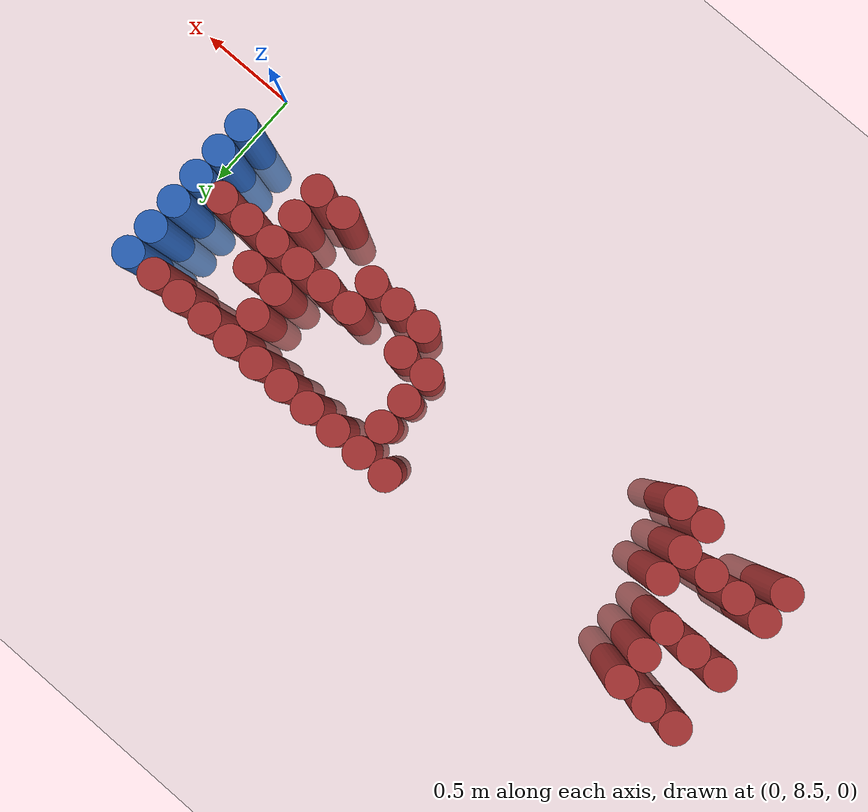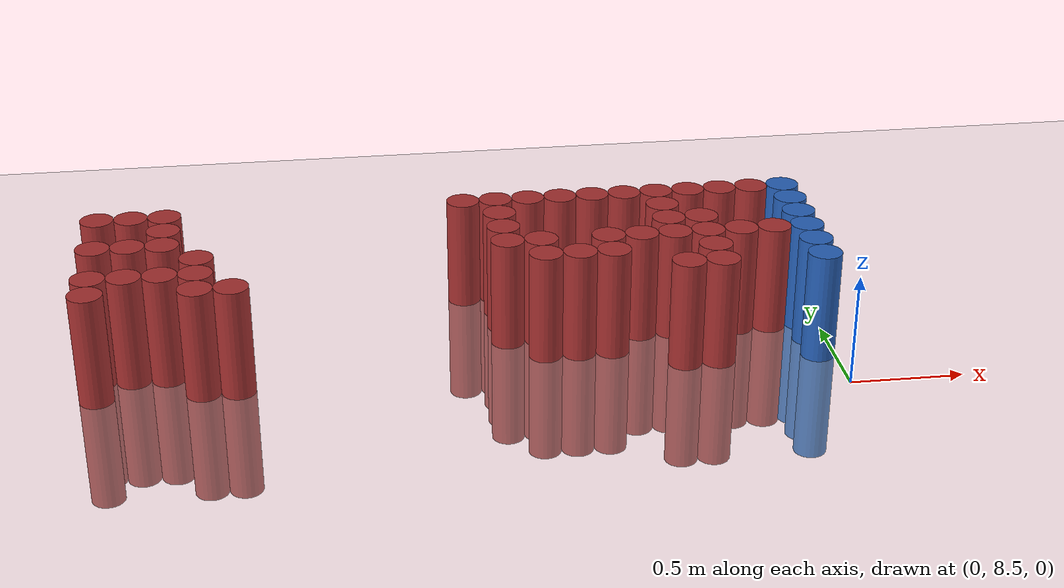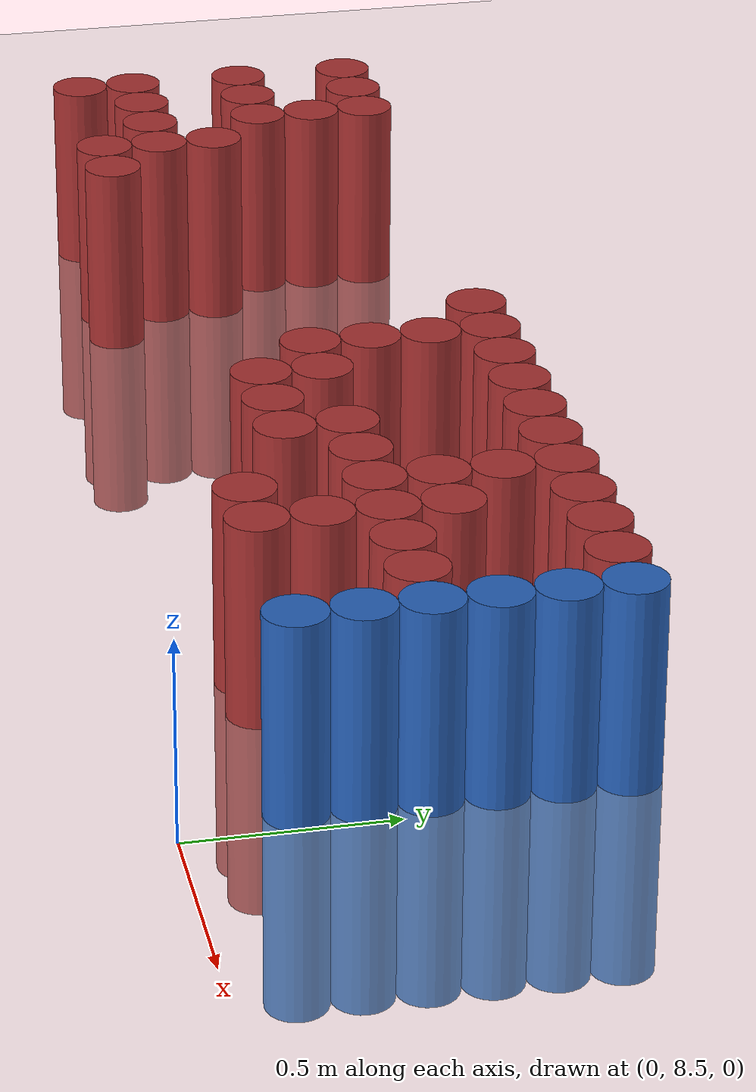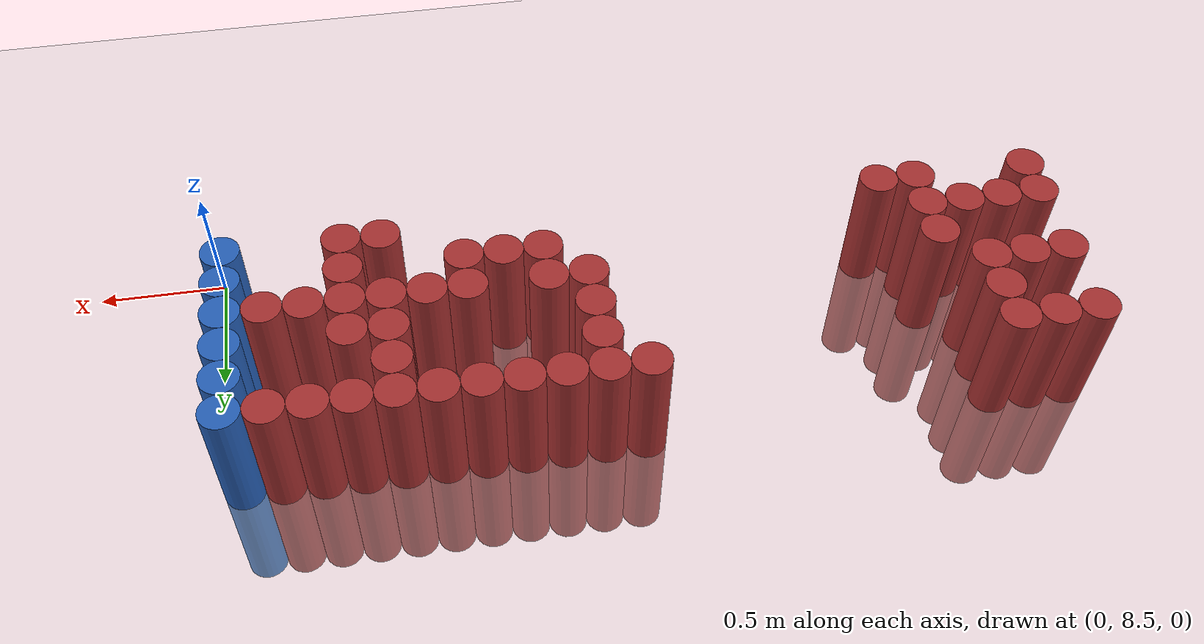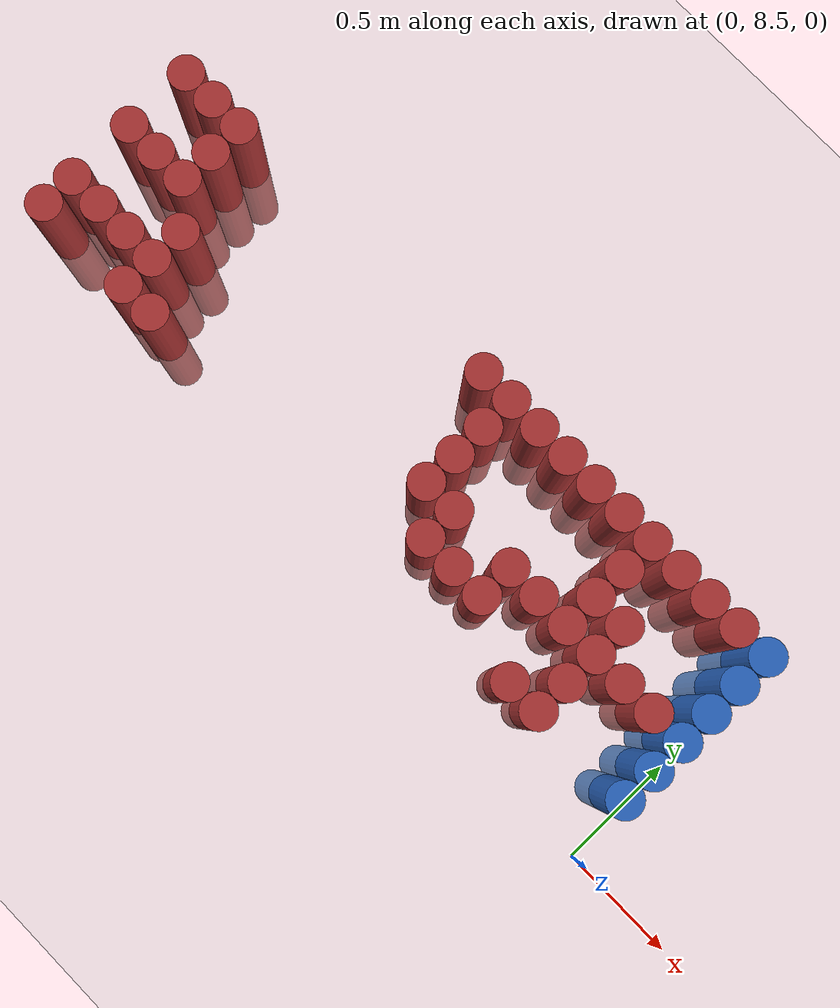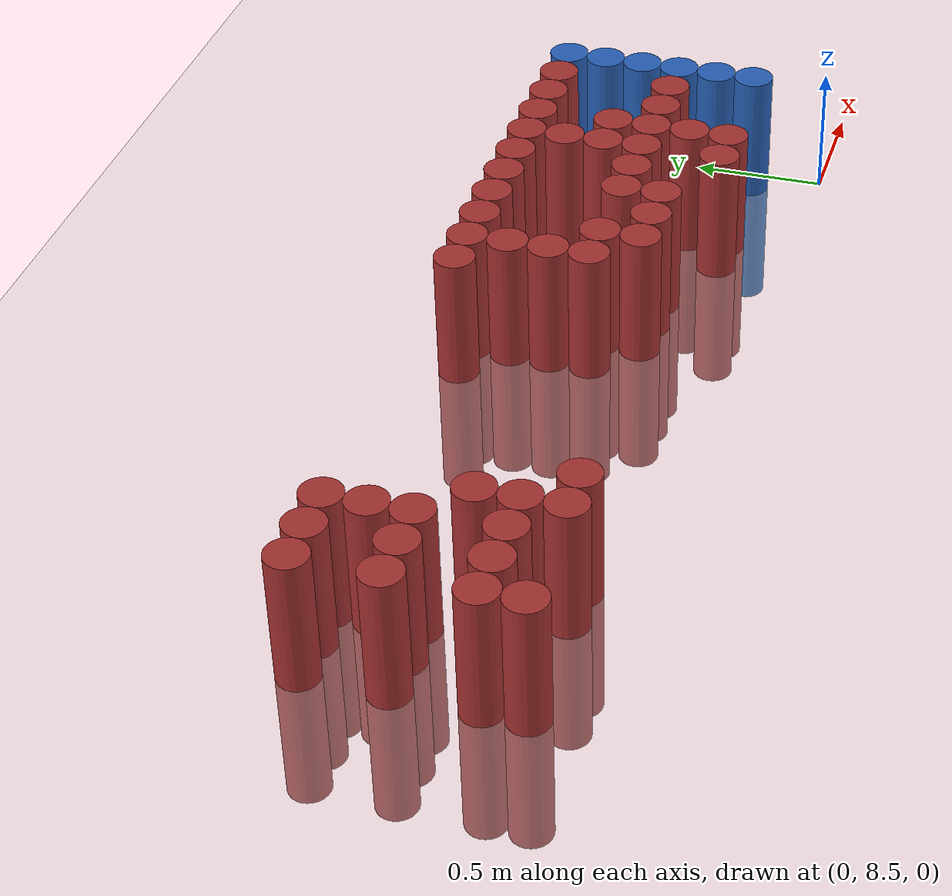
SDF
<sdf version="1.6">
 <world name="default">
  <model name="ground_plane">
   <static>1</static>
   <link name="link">
    <collision name="collision">
     <geometry><plane><normal>0 0 1</normal><size>100 100</size></plane></geometry>
     <surface><friction><ode><mu>100</mu><mu2>50</mu2></ode></friction></surface>
    </collision>
    <visual name="visual">
     <cast_shadows>0</cast_shadows>
     <geometry><plane><normal>0 0 1</normal><size>100 100</size></plane></geometry>
     <material>
      <script><uri>file://media/materials/scripts/gazebo.material</uri><name>Gazebo/Grey</name></script>
     </material>
    </visual>
   </link>
  </model>
  <model name="unit_cylinder_176">
   <static>1</static>
   <pose>-3.225000 8.775000 0.000000 0.000000 0.000000 0.000000</pose>
   <link name="link">
    <inertial>
     <mass>1</mass>
     <inertia><ixx>0.145833</ixx><ixy>0</ixy><ixz>0</ixz><iyy>0.145833</iyy><iyz>0</iyz><izz>0.125</izz></inertia>
    </inertial>
    <collision name="collision">
     <geometry><cylinder><radius>0.075000</radius><length>1</length></cylinder></geometry>
    </collision>
    <visual name="visual">
     <geometry><cylinder><radius>0.075000</radius><length>1</length></cylinder></geometry>
     <material>
      <ambient>0.648000 0.192000 0.192000 1</ambient>
      <diffuse>0.648000 0.192000 0.192000 1</diffuse>
     </material>
     <material>
      <script><name>Gazebo/Grey</name><uri>file://media/materials/scripts/gazebo.material</uri></script>
     </material>
    </visual>
   </link>
  </model>
  <model name="unit_cylinder_177">
   <static>1</static>
   <pose>-3.225000 8.925000 0.000000 0.000000 0.000000 0.000000</pose>
   <link name="link">
    <inertial>
     <mass>1</mass>
     <inertia><ixx>0.145833</ixx><ixy>0</ixy><ixz>0</ixz><iyy>0.145833</iyy><iyz>0</iyz><izz>0.125</izz></inertia>
    </inertial>
    <collision name="collision">
     <geometry><cylinder><radius>0.075000</radius><length>1</length></cylinder></geometry>
    </collision>
    <visual name="visual">
     <geometry><cylinder><radius>0.075000</radius><length>1</length></cylinder></geometry>
     <material>
      <ambient>0.648000 0.192000 0.192000 1</ambient>
      <diffuse>0.648000 0.192000 0.192000 1</diffuse>
     </material>
     <material>
      <script><name>Gazebo/Grey</name><uri>file://media/materials/scripts/gazebo.material</uri></script>
     </material>
    </visual>
   </link>
  </model>
  <model name="unit_cylinder_178">
   <static>1</static>
   <pose>-3.225000 9.225000 0.000000 0.000000 0.000000 0.000000</pose>
   <link name="link">
    <inertial>
     <mass>1</mass>
     <inertia><ixx>0.145833</ixx><ixy>0</ixy><ixz>0</ixz><iyy>0.145833</iyy><iyz>0</iyz><izz>0.125</izz></inertia>
    </inertial>
    <collision name="collision">
     <geometry><cylinder><radius>0.075000</radius><length>1</length></cylinder></geometry>
    </collision>
    <visual name="visual">
     <geometry><cylinder><radius>0.075000</radius><length>1</length></cylinder></geometry>
     <material>
      <ambient>0.648000 0.192000 0.192000 1</ambient>
      <diffuse>0.648000 0.192000 0.192000 1</diffuse>
     </material>
     <material>
      <script><name>Gazebo/Grey</name><uri>file://media/materials/scripts/gazebo.material</uri></script>
     </material>
    </visual>
   </link>
  </model>
  <model name="unit_cylinder_179">
   <static>1</static>
   <pose>-3.225000 9.525000 0.000000 0.000000 0.000000 0.000000</pose>
   <link name="link">
    <inertial>
     <mass>1</mass>
     <inertia><ixx>0.145833</ixx><ixy>0</ixy><ixz>0</ixz><iyy>0.145833</iyy><iyz>0</iyz><izz>0.125</izz></inertia>
    </inertial>
    <collision name="collision">
     <geometry><cylinder><radius>0.075000</radius><length>1</length></cylinder></geometry>
    </collision>
    <visual name="visual">
     <geometry><cylinder><radius>0.075000</radius><length>1</length></cylinder></geometry>
     <material>
      <ambient>0.648000 0.192000 0.192000 1</ambient>
      <diffuse>0.648000 0.192000 0.192000 1</diffuse>
     </material>
     <material>
      <script><name>Gazebo/Grey</name><uri>file://media/materials/scripts/gazebo.material</uri></script>
     </material>
    </visual>
   </link>
  </model>
  <model name="unit_cylinder_181">
   <static>1</static>
   <pose>-3.075000 8.925000 0.000000 0.000000 0.000000 0.000000</pose>
   <link name="link">
    <inertial>
     <mass>1</mass>
     <inertia><ixx>0.145833</ixx><ixy>0</ixy><ixz>0</ixz><iyy>0.145833</iyy><iyz>0</iyz><izz>0.125</izz></inertia>
    </inertial>
    <collision name="collision">
     <geometry><cylinder><radius>0.075000</radius><length>1</length></cylinder></geometry>
    </collision>
    <visual name="visual">
     <geometry><cylinder><radius>0.075000</radius><length>1</length></cylinder></geometry>
     <material>
      <ambient>0.648000 0.192000 0.192000 1</ambient>
      <diffuse>0.648000 0.192000 0.192000 1</diffuse>
     </material>
     <material>
      <script><name>Gazebo/Grey</name><uri>file://media/materials/scripts/gazebo.material</uri></script>
     </material>
    </visual>
   </link>
  </model>
  <model name="unit_cylinder_182">
   <static>1</static>
   <pose>-3.075000 9.225000 0.000000 0.000000 0.000000 0.000000</pose>
   <link name="link">
    <inertial>
     <mass>1</mass>
     <inertia><ixx>0.145833</ixx><ixy>0</ixy><ixz>0</ixz><iyy>0.145833</iyy><iyz>0</iyz><izz>0.125</izz></inertia>
    </inertial>
    <collision name="collision">
     <geometry><cylinder><radius>0.075000</radius><length>1</length></cylinder></geometry>
    </collision>
    <visual name="visual">
     <geometry><cylinder><radius>0.075000</radius><length>1</length></cylinder></geometry>
     <material>
      <ambient>0.648000 0.192000 0.192000 1</ambient>
      <diffuse>0.648000 0.192000 0.192000 1</diffuse>
     </material>
     <material>
      <script><name>Gazebo/Grey</name><uri>file://media/materials/scripts/gazebo.material</uri></script>
     </material>
    </visual>
   </link>
  </model>
  <model name="unit_cylinder_183">
   <static>1</static>
   <pose>-3.075000 9.525000 0.000000 0.000000 0.000000 0.000000</pose>
   <link name="link">
    <inertial>
     <mass>1</mass>
     <inertia><ixx>0.145833</ixx><ixy>0</ixy><ixz>0</ixz><iyy>0.145833</iyy><iyz>0</iyz><izz>0.125</izz></inertia>
    </inertial>
    <collision name="collision">
     <geometry><cylinder><radius>0.075000</radius><length>1</length></cylinder></geometry>
    </collision>
    <visual name="visual">
     <geometry><cylinder><radius>0.075000</radius><length>1</length></cylinder></geometry>
     <material>
      <ambient>0.648000 0.192000 0.192000 1</ambient>
      <diffuse>0.648000 0.192000 0.192000 1</diffuse>
     </material>
     <material>
      <script><name>Gazebo/Grey</name><uri>file://media/materials/scripts/gazebo.material</uri></script>
     </material>
    </visual>
   </link>
  </model>
  <model name="unit_cylinder_185">
   <static>1</static>
   <pose>-2.925000 8.925000 0.000000 0.000000 0.000000 0.000000</pose>
   <link name="link">
    <inertial>
     <mass>1</mass>
     <inertia><ixx>0.145833</ixx><ixy>0</ixy><ixz>0</ixz><iyy>0.145833</iyy><iyz>0</iyz><izz>0.125</izz></inertia>
    </inertial>
    <collision name="collision">
     <geometry><cylinder><radius>0.075000</radius><length>1</length></cylinder></geometry>
    </collision>
    <visual name="visual">
     <geometry><cylinder><radius>0.075000</radius><length>1</length></cylinder></geometry>
     <material>
      <ambient>0.648000 0.192000 0.192000 1</ambient>
      <diffuse>0.648000 0.192000 0.192000 1</diffuse>
     </material>
     <material>
      <script><name>Gazebo/Grey</name><uri>file://media/materials/scripts/gazebo.material</uri></script>
     </material>
    </visual>
   </link>
  </model>
  <model name="unit_cylinder_186">
   <static>1</static>
   <pose>-2.925000 9.225000 0.000000 0.000000 0.000000 0.000000</pose>
   <link name="link">
    <inertial>
     <mass>1</mass>
     <inertia><ixx>0.145833</ixx><ixy>0</ixy><ixz>0</ixz><iyy>0.145833</iyy><iyz>0</iyz><izz>0.125</izz></inertia>
    </inertial>
    <collision name="collision">
     <geometry><cylinder><radius>0.075000</radius><length>1</length></cylinder></geometry>
    </collision>
    <visual name="visual">
     <geometry><cylinder><radius>0.075000</radius><length>1</length></cylinder></geometry>
     <material>
      <ambient>0.648000 0.192000 0.192000 1</ambient>
      <diffuse>0.648000 0.192000 0.192000 1</diffuse>
     </material>
     <material>
      <script><name>Gazebo/Grey</name><uri>file://media/materials/scripts/gazebo.material</uri></script>
     </material>
    </visual>
   </link>
  </model>
  <model name="unit_cylinder_187">
   <static>1</static>
   <pose>-2.925000 9.375000 0.000000 0.000000 0.000000 0.000000</pose>
   <link name="link">
    <inertial>
     <mass>1</mass>
     <inertia><ixx>0.145833</ixx><ixy>0</ixy><ixz>0</ixz><iyy>0.145833</iyy><iyz>0</iyz><izz>0.125</izz></inertia>
    </inertial>
    <collision name="collision">
     <geometry><cylinder><radius>0.075000</radius><length>1</length></cylinder></geometry>
    </collision>
    <visual name="visual">
     <geometry><cylinder><radius>0.075000</radius><length>1</length></cylinder></geometry>
     <material>
      <ambient>0.648000 0.192000 0.192000 1</ambient>
      <diffuse>0.648000 0.192000 0.192000 1</diffuse>
     </material>
     <material>
      <script><name>Gazebo/Grey</name><uri>file://media/materials/scripts/gazebo.material</uri></script>
     </material>
    </visual>
   </link>
  </model>
  <model name="unit_cylinder_188">
   <static>1</static>
   <pose>-2.925000 9.525000 0.000000 0.000000 0.000000 0.000000</pose>
   <link name="link">
    <inertial>
     <mass>1</mass>
     <inertia><ixx>0.145833</ixx><ixy>0</ixy><ixz>0</ixz><iyy>0.145833</iyy><iyz>0</iyz><izz>0.125</izz></inertia>
    </inertial>
    <collision name="collision">
     <geometry><cylinder><radius>0.075000</radius><length>1</length></cylinder></geometry>
    </collision>
    <visual name="visual">
     <geometry><cylinder><radius>0.075000</radius><length>1</length></cylinder></geometry>
     <material>
      <ambient>0.648000 0.192000 0.192000 1</ambient>
      <diffuse>0.648000 0.192000 0.192000 1</diffuse>
     </material>
     <material>
      <script><name>Gazebo/Grey</name><uri>file://media/materials/scripts/gazebo.material</uri></script>
     </material>
    </visual>
   </link>
  </model>
  <model name="unit_cylinder_191">
   <static>1</static>
   <pose>-2.775000 8.775000 0.000000 0.000000 0.000000 0.000000</pose>
   <link name="link">
    <inertial>
     <mass>1</mass>
     <inertia><ixx>0.145833</ixx><ixy>0</ixy><ixz>0</ixz><iyy>0.145833</iyy><iyz>0</iyz><izz>0.125</izz></inertia>
    </inertial>
    <collision name="collision">
     <geometry><cylinder><radius>0.075000</radius><length>1</length></cylinder></geometry>
    </collision>
    <visual name="visual">
     <geometry><cylinder><radius>0.075000</radius><length>1</length></cylinder></geometry>
     <material>
      <ambient>0.648000 0.192000 0.192000 1</ambient>
      <diffuse>0.648000 0.192000 0.192000 1</diffuse>
     </material>
     <material>
      <script><name>Gazebo/Grey</name><uri>file://media/materials/scripts/gazebo.material</uri></script>
     </material>
    </visual>
   </link>
  </model>
  <model name="unit_cylinder_192">
   <static>1</static>
   <pose>-2.775000 8.925000 0.000000 0.000000 0.000000 0.000000</pose>
   <link name="link">
    <inertial>
     <mass>1</mass>
     <inertia><ixx>0.145833</ixx><ixy>0</ixy><ixz>0</ixz><iyy>0.145833</iyy><iyz>0</iyz><izz>0.125</izz></inertia>
    </inertial>
    <collision name="collision">
     <geometry><cylinder><radius>0.075000</radius><length>1</length></cylinder></geometry>
    </collision>
    <visual name="visual">
     <geometry><cylinder><radius>0.075000</radius><length>1</length></cylinder></geometry>
     <material>
      <ambient>0.648000 0.192000 0.192000 1</ambient>
      <diffuse>0.648000 0.192000 0.192000 1</diffuse>
     </material>
     <material>
      <script><name>Gazebo/Grey</name><uri>file://media/materials/scripts/gazebo.material</uri></script>
     </material>
    </visual>
   </link>
  </model>
  <model name="unit_cylinder_193">
   <static>1</static>
   <pose>-2.775000 9.075000 0.000000 0.000000 0.000000 0.000000</pose>
   <link name="link">
    <inertial>
     <mass>1</mass>
     <inertia><ixx>0.145833</ixx><ixy>0</ixy><ixz>0</ixz><iyy>0.145833</iyy><iyz>0</iyz><izz>0.125</izz></inertia>
    </inertial>
    <collision name="collision">
     <geometry><cylinder><radius>0.075000</radius><length>1</length></cylinder></geometry>
    </collision>
    <visual name="visual">
     <geometry><cylinder><radius>0.075000</radius><length>1</length></cylinder></geometry>
     <material>
      <ambient>0.648000 0.192000 0.192000 1</ambient>
      <diffuse>0.648000 0.192000 0.192000 1</diffuse>
     </material>
     <material>
      <script><name>Gazebo/Grey</name><uri>file://media/materials/scripts/gazebo.material</uri></script>
     </material>
    </visual>
   </link>
  </model>
  <model name="unit_cylinder_196">
   <static>1</static>
   <pose>-2.625000 8.775000 0.000000 0.000000 0.000000 0.000000</pose>
   <link name="link">
    <inertial>
     <mass>1</mass>
     <inertia><ixx>0.145833</ixx><ixy>0</ixy><ixz>0</ixz><iyy>0.145833</iyy><iyz>0</iyz><izz>0.125</izz></inertia>
    </inertial>
    <collision name="collision">
     <geometry><cylinder><radius>0.075000</radius><length>1</length></cylinder></geometry>
    </collision>
    <visual name="visual">
     <geometry><cylinder><radius>0.075000</radius><length>1</length></cylinder></geometry>
     <material>
      <ambient>0.648000 0.192000 0.192000 1</ambient>
      <diffuse>0.648000 0.192000 0.192000 1</diffuse>
     </material>
     <material>
      <script><name>Gazebo/Grey</name><uri>file://media/materials/scripts/gazebo.material</uri></script>
     </material>
    </visual>
   </link>
  </model>
  <model name="unit_cylinder_203">
   <static>1</static>
   <pose>-1.575000 9.525000 0.000000 0.000000 0.000000 0.000000</pose>
   <link name="link">
    <inertial>
     <mass>1</mass>
     <inertia><ixx>0.145833</ixx><ixy>0</ixy><ixz>0</ixz><iyy>0.145833</iyy><iyz>0</iyz><izz>0.125</izz></inertia>
    </inertial>
    <collision name="collision">
     <geometry><cylinder><radius>0.075000</radius><length>1</length></cylinder></geometry>
    </collision>
    <visual name="visual">
     <geometry><cylinder><radius>0.075000</radius><length>1</length></cylinder></geometry>
     <material>
      <ambient>0.648000 0.192000 0.192000 1</ambient>
      <diffuse>0.648000 0.192000 0.192000 1</diffuse>
     </material>
     <material>
      <script><name>Gazebo/Grey</name><uri>file://media/materials/scripts/gazebo.material</uri></script>
     </material>
    </visual>
   </link>
  </model>
  <model name="unit_cylinder_207">
   <static>1</static>
   <pose>-1.425000 9.075000 0.000000 0.000000 0.000000 0.000000</pose>
   <link name="link">
    <inertial>
     <mass>1</mass>
     <inertia><ixx>0.145833</ixx><ixy>0</ixy><ixz>0</ixz><iyy>0.145833</iyy><iyz>0</iyz><izz>0.125</izz></inertia>
    </inertial>
    <collision name="collision">
     <geometry><cylinder><radius>0.075000</radius><length>1</length></cylinder></geometry>
    </collision>
    <visual name="visual">
     <geometry><cylinder><radius>0.075000</radius><length>1</length></cylinder></geometry>
     <material>
      <ambient>0.648000 0.192000 0.192000 1</ambient>
      <diffuse>0.648000 0.192000 0.192000 1</diffuse>
     </material>
     <material>
      <script><name>Gazebo/Grey</name><uri>file://media/materials/scripts/gazebo.material</uri></script>
     </material>
    </visual>
   </link>
  </model>
  <model name="unit_cylinder_208">
   <static>1</static>
   <pose>-1.425000 9.225000 0.000000 0.000000 0.000000 0.000000</pose>
   <link name="link">
    <inertial>
     <mass>1</mass>
     <inertia><ixx>0.145833</ixx><ixy>0</ixy><ixz>0</ixz><iyy>0.145833</iyy><iyz>0</iyz><izz>0.125</izz></inertia>
    </inertial>
    <collision name="collision">
     <geometry><cylinder><radius>0.075000</radius><length>1</length></cylinder></geometry>
    </collision>
    <visual name="visual">
     <geometry><cylinder><radius>0.075000</radius><length>1</length></cylinder></geometry>
     <material>
      <ambient>0.648000 0.192000 0.192000 1</ambient>
      <diffuse>0.648000 0.192000 0.192000 1</diffuse>
     </material>
     <material>
      <script><name>Gazebo/Grey</name><uri>file://media/materials/scripts/gazebo.material</uri></script>
     </material>
    </visual>
   </link>
  </model>
  <model name="unit_cylinder_209">
   <static>1</static>
   <pose>-1.425000 9.375000 0.000000 0.000000 0.000000 0.000000</pose>
   <link name="link">
    <inertial>
     <mass>1</mass>
     <inertia><ixx>0.145833</ixx><ixy>0</ixy><ixz>0</ixz><iyy>0.145833</iyy><iyz>0</iyz><izz>0.125</izz></inertia>
    </inertial>
    <collision name="collision">
     <geometry><cylinder><radius>0.075000</radius><length>1</length></cylinder></geometry>
    </collision>
    <visual name="visual">
     <geometry><cylinder><radius>0.075000</radius><length>1</length></cylinder></geometry>
     <material>
      <ambient>0.648000 0.192000 0.192000 1</ambient>
      <diffuse>0.648000 0.192000 0.192000 1</diffuse>
     </material>
     <material>
      <script><name>Gazebo/Grey</name><uri>file://media/materials/scripts/gazebo.material</uri></script>
     </material>
    </visual>
   </link>
  </model>
  <model name="unit_cylinder_210">
   <static>1</static>
   <pose>-1.425000 9.525000 0.000000 0.000000 0.000000 0.000000</pose>
   <link name="link">
    <inertial>
     <mass>1</mass>
     <inertia><ixx>0.145833</ixx><ixy>0</ixy><ixz>0</ixz><iyy>0.145833</iyy><iyz>0</iyz><izz>0.125</izz></inertia>
    </inertial>
    <collision name="collision">
     <geometry><cylinder><radius>0.075000</radius><length>1</length></cylinder></geometry>
    </collision>
    <visual name="visual">
     <geometry><cylinder><radius>0.075000</radius><length>1</length></cylinder></geometry>
     <material>
      <ambient>0.648000 0.192000 0.192000 1</ambient>
      <diffuse>0.648000 0.192000 0.192000 1</diffuse>
     </material>
     <material>
      <script><name>Gazebo/Grey</name><uri>file://media/materials/scripts/gazebo.material</uri></script>
     </material>
    </visual>
   </link>
  </model>
  <model name="unit_cylinder_214">
   <static>1</static>
   <pose>-1.275000 8.925000 0.000000 0.000000 0.000000 0.000000</pose>
   <link name="link">
    <inertial>
     <mass>1</mass>
     <inertia><ixx>0.145833</ixx><ixy>0</ixy><ixz>0</ixz><iyy>0.145833</iyy><iyz>0</iyz><izz>0.125</izz></inertia>
    </inertial>
    <collision name="collision">
     <geometry><cylinder><radius>0.075000</radius><length>1</length></cylinder></geometry>
    </collision>
    <visual name="visual">
     <geometry><cylinder><radius>0.075000</radius><length>1</length></cylinder></geometry>
     <material>
      <ambient>0.648000 0.192000 0.192000 1</ambient>
      <diffuse>0.648000 0.192000 0.192000 1</diffuse>
     </material>
     <material>
      <script><name>Gazebo/Grey</name><uri>file://media/materials/scripts/gazebo.material</uri></script>
     </material>
    </visual>
   </link>
  </model>
  <model name="unit_cylinder_215">
   <static>1</static>
   <pose>-1.275000 9.075000 0.000000 0.000000 0.000000 0.000000</pose>
   <link name="link">
    <inertial>
     <mass>1</mass>
     <inertia><ixx>0.145833</ixx><ixy>0</ixy><ixz>0</ixz><iyy>0.145833</iyy><iyz>0</iyz><izz>0.125</izz></inertia>
    </inertial>
    <collision name="collision">
     <geometry><cylinder><radius>0.075000</radius><length>1</length></cylinder></geometry>
    </collision>
    <visual name="visual">
     <geometry><cylinder><radius>0.075000</radius><length>1</length></cylinder></geometry>
     <material>
      <ambient>0.648000 0.192000 0.192000 1</ambient>
      <diffuse>0.648000 0.192000 0.192000 1</diffuse>
     </material>
     <material>
      <script><name>Gazebo/Grey</name><uri>file://media/materials/scripts/gazebo.material</uri></script>
     </material>
    </visual>
   </link>
  </model>
  <model name="unit_cylinder_216">
   <static>1</static>
   <pose>-1.275000 9.525000 0.000000 0.000000 0.000000 0.000000</pose>
   <link name="link">
    <inertial>
     <mass>1</mass>
     <inertia><ixx>0.145833</ixx><ixy>0</ixy><ixz>0</ixz><iyy>0.145833</iyy><iyz>0</iyz><izz>0.125</izz></inertia>
    </inertial>
    <collision name="collision">
     <geometry><cylinder><radius>0.075000</radius><length>1</length></cylinder></geometry>
    </collision>
    <visual name="visual">
     <geometry><cylinder><radius>0.075000</radius><length>1</length></cylinder></geometry>
     <material>
      <ambient>0.648000 0.192000 0.192000 1</ambient>
      <diffuse>0.648000 0.192000 0.192000 1</diffuse>
     </material>
     <material>
      <script><name>Gazebo/Grey</name><uri>file://media/materials/scripts/gazebo.material</uri></script>
     </material>
    </visual>
   </link>
  </model>
  <model name="unit_cylinder_219">
   <static>1</static>
   <pose>-1.125000 8.925000 0.000000 0.000000 0.000000 0.000000</pose>
   <link name="link">
    <inertial>
     <mass>1</mass>
     <inertia><ixx>0.145833</ixx><ixy>0</ixy><ixz>0</ixz><iyy>0.145833</iyy><iyz>0</iyz><izz>0.125</izz></inertia>
    </inertial>
    <collision name="collision">
     <geometry><cylinder><radius>0.075000</radius><length>1</length></cylinder></geometry>
    </collision>
    <visual name="visual">
     <geometry><cylinder><radius>0.075000</radius><length>1</length></cylinder></geometry>
     <material>
      <ambient>0.648000 0.192000 0.192000 1</ambient>
      <diffuse>0.648000 0.192000 0.192000 1</diffuse>
     </material>
     <material>
      <script><name>Gazebo/Grey</name><uri>file://media/materials/scripts/gazebo.material</uri></script>
     </material>
    </visual>
   </link>
  </model>
  <model name="unit_cylinder_220">
   <static>1</static>
   <pose>-1.125000 9.525000 0.000000 0.000000 0.000000 0.000000</pose>
   <link name="link">
    <inertial>
     <mass>1</mass>
     <inertia><ixx>0.145833</ixx><ixy>0</ixy><ixz>0</ixz><iyy>0.145833</iyy><iyz>0</iyz><izz>0.125</izz></inertia>
    </inertial>
    <collision name="collision">
     <geometry><cylinder><radius>0.075000</radius><length>1</length></cylinder></geometry>
    </collision>
    <visual name="visual">
     <geometry><cylinder><radius>0.075000</radius><length>1</length></cylinder></geometry>
     <material>
      <ambient>0.648000 0.192000 0.192000 1</ambient>
      <diffuse>0.648000 0.192000 0.192000 1</diffuse>
     </material>
     <material>
      <script><name>Gazebo/Grey</name><uri>file://media/materials/scripts/gazebo.material</uri></script>
     </material>
    </visual>
   </link>
  </model>
  <model name="unit_cylinder_225">
   <static>1</static>
   <pose>-0.975000 8.925000 0.000000 0.000000 0.000000 0.000000</pose>
   <link name="link">
    <inertial>
     <mass>1</mass>
     <inertia><ixx>0.145833</ixx><ixy>0</ixy><ixz>0</ixz><iyy>0.145833</iyy><iyz>0</iyz><izz>0.125</izz></inertia>
    </inertial>
    <collision name="collision">
     <geometry><cylinder><radius>0.075000</radius><length>1</length></cylinder></geometry>
    </collision>
    <visual name="visual">
     <geometry><cylinder><radius>0.075000</radius><length>1</length></cylinder></geometry>
     <material>
      <ambient>0.648000 0.192000 0.192000 1</ambient>
      <diffuse>0.648000 0.192000 0.192000 1</diffuse>
     </material>
     <material>
      <script><name>Gazebo/Grey</name><uri>file://media/materials/scripts/gazebo.material</uri></script>
     </material>
    </visual>
   </link>
  </model>
  <model name="unit_cylinder_226">
   <static>1</static>
   <pose>-0.975000 9.075000 0.000000 0.000000 0.000000 0.000000</pose>
   <link name="link">
    <inertial>
     <mass>1</mass>
     <inertia><ixx>0.145833</ixx><ixy>0</ixy><ixz>0</ixz><iyy>0.145833</iyy><iyz>0</iyz><izz>0.125</izz></inertia>
    </inertial>
    <collision name="collision">
     <geometry><cylinder><radius>0.075000</radius><length>1</length></cylinder></geometry>
    </collision>
    <visual name="visual">
     <geometry><cylinder><radius>0.075000</radius><length>1</length></cylinder></geometry>
     <material>
      <ambient>0.648000 0.192000 0.192000 1</ambient>
      <diffuse>0.648000 0.192000 0.192000 1</diffuse>
     </material>
     <material>
      <script><name>Gazebo/Grey</name><uri>file://media/materials/scripts/gazebo.material</uri></script>
     </material>
    </visual>
   </link>
  </model>
  <model name="unit_cylinder_227">
   <static>1</static>
   <pose>-0.975000 9.525000 0.000000 0.000000 0.000000 0.000000</pose>
   <link name="link">
    <inertial>
     <mass>1</mass>
     <inertia><ixx>0.145833</ixx><ixy>0</ixy><ixz>0</ixz><iyy>0.145833</iyy><iyz>0</iyz><izz>0.125</izz></inertia>
    </inertial>
    <collision name="collision">
     <geometry><cylinder><radius>0.075000</radius><length>1</length></cylinder></geometry>
    </collision>
    <visual name="visual">
     <geometry><cylinder><radius>0.075000</radius><length>1</length></cylinder></geometry>
     <material>
      <ambient>0.648000 0.192000 0.192000 1</ambient>
      <diffuse>0.648000 0.192000 0.192000 1</diffuse>
     </material>
     <material>
      <script><name>Gazebo/Grey</name><uri>file://media/materials/scripts/gazebo.material</uri></script>
     </material>
    </visual>
   </link>
  </model>
  <model name="unit_cylinder_238">
   <static>1</static>
   <pose>-0.825000 9.075000 0.000000 0.000000 0.000000 0.000000</pose>
   <link name="link">
    <inertial>
     <mass>1</mass>
     <inertia><ixx>0.145833</ixx><ixy>0</ixy><ixz>0</ixz><iyy>0.145833</iyy><iyz>0</iyz><izz>0.125</izz></inertia>
    </inertial>
    <collision name="collision">
     <geometry><cylinder><radius>0.075000</radius><length>1</length></cylinder></geometry>
    </collision>
    <visual name="visual">
     <geometry><cylinder><radius>0.075000</radius><length>1</length></cylinder></geometry>
     <material>
      <ambient>0.648000 0.192000 0.192000 1</ambient>
      <diffuse>0.648000 0.192000 0.192000 1</diffuse>
     </material>
     <material>
      <script><name>Gazebo/Grey</name><uri>file://media/materials/scripts/gazebo.material</uri></script>
     </material>
    </visual>
   </link>
  </model>
  <model name="unit_cylinder_239">
   <static>1</static>
   <pose>-0.825000 9.525000 0.000000 0.000000 0.000000 0.000000</pose>
   <link name="link">
    <inertial>
     <mass>1</mass>
     <inertia><ixx>0.145833</ixx><ixy>0</ixy><ixz>0</ixz><iyy>0.145833</iyy><iyz>0</iyz><izz>0.125</izz></inertia>
    </inertial>
    <collision name="collision">
     <geometry><cylinder><radius>0.075000</radius><length>1</length></cylinder></geometry>
    </collision>
    <visual name="visual">
     <geometry><cylinder><radius>0.075000</radius><length>1</length></cylinder></geometry>
     <material>
      <ambient>0.648000 0.192000 0.192000 1</ambient>
      <diffuse>0.648000 0.192000 0.192000 1</diffuse>
     </material>
     <material>
      <script><name>Gazebo/Grey</name><uri>file://media/materials/scripts/gazebo.material</uri></script>
     </material>
    </visual>
   </link>
  </model>
  <model name="unit_cylinder_246">
   <static>1</static>
   <pose>-0.675000 8.775000 0.000000 0.000000 0.000000 0.000000</pose>
   <link name="link">
    <inertial>
     <mass>1</mass>
     <inertia><ixx>0.145833</ixx><ixy>0</ixy><ixz>0</ixz><iyy>0.145833</iyy><iyz>0</iyz><izz>0.125</izz></inertia>
    </inertial>
    <collision name="collision">
     <geometry><cylinder><radius>0.075000</radius><length>1</length></cylinder></geometry>
    </collision>
    <visual name="visual">
     <geometry><cylinder><radius>0.075000</radius><length>1</length></cylinder></geometry>
     <material>
      <ambient>0.648000 0.192000 0.192000 1</ambient>
      <diffuse>0.648000 0.192000 0.192000 1</diffuse>
     </material>
     <material>
      <script><name>Gazebo/Grey</name><uri>file://media/materials/scripts/gazebo.material</uri></script>
     </material>
    </visual>
   </link>
  </model>
  <model name="unit_cylinder_247">
   <static>1</static>
   <pose>-0.675000 9.075000 0.000000 0.000000 0.000000 0.000000</pose>
   <link name="link">
    <inertial>
     <mass>1</mass>
     <inertia><ixx>0.145833</ixx><ixy>0</ixy><ixz>0</ixz><iyy>0.145833</iyy><iyz>0</iyz><izz>0.125</izz></inertia>
    </inertial>
    <collision name="collision">
     <geometry><cylinder><radius>0.075000</radius><length>1</length></cylinder></geometry>
    </collision>
    <visual name="visual">
     <geometry><cylinder><radius>0.075000</radius><length>1</length></cylinder></geometry>
     <material>
      <ambient>0.648000 0.192000 0.192000 1</ambient>
      <diffuse>0.648000 0.192000 0.192000 1</diffuse>
     </material>
     <material>
      <script><name>Gazebo/Grey</name><uri>file://media/materials/scripts/gazebo.material</uri></script>
     </material>
    </visual>
   </link>
  </model>
  <model name="unit_cylinder_248">
   <static>1</static>
   <pose>-0.675000 9.225000 0.000000 0.000000 0.000000 0.000000</pose>
   <link name="link">
    <inertial>
     <mass>1</mass>
     <inertia><ixx>0.145833</ixx><ixy>0</ixy><ixz>0</ixz><iyy>0.145833</iyy><iyz>0</iyz><izz>0.125</izz></inertia>
    </inertial>
    <collision name="collision">
     <geometry><cylinder><radius>0.075000</radius><length>1</length></cylinder></geometry>
    </collision>
    <visual name="visual">
     <geometry><cylinder><radius>0.075000</radius><length>1</length></cylinder></geometry>
     <material>
      <ambient>0.648000 0.192000 0.192000 1</ambient>
      <diffuse>0.648000 0.192000 0.192000 1</diffuse>
     </material>
     <material>
      <script><name>Gazebo/Grey</name><uri>file://media/materials/scripts/gazebo.material</uri></script>
     </material>
    </visual>
   </link>
  </model>
  <model name="unit_cylinder_249">
   <static>1</static>
   <pose>-0.675000 9.375000 0.000000 0.000000 0.000000 0.000000</pose>
   <link name="link">
    <inertial>
     <mass>1</mass>
     <inertia><ixx>0.145833</ixx><ixy>0</ixy><ixz>0</ixz><iyy>0.145833</iyy><iyz>0</iyz><izz>0.125</izz></inertia>
    </inertial>
    <collision name="collision">
     <geometry><cylinder><radius>0.075000</radius><length>1</length></cylinder></geometry>
    </collision>
    <visual name="visual">
     <geometry><cylinder><radius>0.075000</radius><length>1</length></cylinder></geometry>
     <material>
      <ambient>0.648000 0.192000 0.192000 1</ambient>
      <diffuse>0.648000 0.192000 0.192000 1</diffuse>
     </material>
     <material>
      <script><name>Gazebo/Grey</name><uri>file://media/materials/scripts/gazebo.material</uri></script>
     </material>
    </visual>
   </link>
  </model>
  <model name="unit_cylinder_250">
   <static>1</static>
   <pose>-0.675000 9.525000 0.000000 0.000000 0.000000 0.000000</pose>
   <link name="link">
    <inertial>
     <mass>1</mass>
     <inertia><ixx>0.145833</ixx><ixy>0</ixy><ixz>0</ixz><iyy>0.145833</iyy><iyz>0</iyz><izz>0.125</izz></inertia>
    </inertial>
    <collision name="collision">
     <geometry><cylinder><radius>0.075000</radius><length>1</length></cylinder></geometry>
    </collision>
    <visual name="visual">
     <geometry><cylinder><radius>0.075000</radius><length>1</length></cylinder></geometry>
     <material>
      <ambient>0.648000 0.192000 0.192000 1</ambient>
      <diffuse>0.648000 0.192000 0.192000 1</diffuse>
     </material>
     <material>
      <script><name>Gazebo/Grey</name><uri>file://media/materials/scripts/gazebo.material</uri></script>
     </material>
    </visual>
   </link>
  </model>
  <model name="unit_cylinder_255">
   <static>1</static>
   <pose>-0.525000 8.775000 0.000000 0.000000 0.000000 0.000000</pose>
   <link name="link">
    <inertial>
     <mass>1</mass>
     <inertia><ixx>0.145833</ixx><ixy>0</ixy><ixz>0</ixz><iyy>0.145833</iyy><iyz>0</iyz><izz>0.125</izz></inertia>
    </inertial>
    <collision name="collision">
     <geometry><cylinder><radius>0.075000</radius><length>1</length></cylinder></geometry>
    </collision>
    <visual name="visual">
     <geometry><cylinder><radius>0.075000</radius><length>1</length></cylinder></geometry>
     <material>
      <ambient>0.648000 0.192000 0.192000 1</ambient>
      <diffuse>0.648000 0.192000 0.192000 1</diffuse>
     </material>
     <material>
      <script><name>Gazebo/Grey</name><uri>file://media/materials/scripts/gazebo.material</uri></script>
     </material>
    </visual>
   </link>
  </model>
  <model name="unit_cylinder_256">
   <static>1</static>
   <pose>-0.525000 8.925000 0.000000 0.000000 0.000000 0.000000</pose>
   <link name="link">
    <inertial>
     <mass>1</mass>
     <inertia><ixx>0.145833</ixx><ixy>0</ixy><ixz>0</ixz><iyy>0.145833</iyy><iyz>0</iyz><izz>0.125</izz></inertia>
    </inertial>
    <collision name="collision">
     <geometry><cylinder><radius>0.075000</radius><length>1</length></cylinder></geometry>
    </collision>
    <visual name="visual">
     <geometry><cylinder><radius>0.075000</radius><length>1</length></cylinder></geometry>
     <material>
      <ambient>0.648000 0.192000 0.192000 1</ambient>
      <diffuse>0.648000 0.192000 0.192000 1</diffuse>
     </material>
     <material>
      <script><name>Gazebo/Grey</name><uri>file://media/materials/scripts/gazebo.material</uri></script>
     </material>
    </visual>
   </link>
  </model>
  <model name="unit_cylinder_257">
   <static>1</static>
   <pose>-0.525000 9.075000 0.000000 0.000000 0.000000 0.000000</pose>
   <link name="link">
    <inertial>
     <mass>1</mass>
     <inertia><ixx>0.145833</ixx><ixy>0</ixy><ixz>0</ixz><iyy>0.145833</iyy><iyz>0</iyz><izz>0.125</izz></inertia>
    </inertial>
    <collision name="collision">
     <geometry><cylinder><radius>0.075000</radius><length>1</length></cylinder></geometry>
    </collision>
    <visual name="visual">
     <geometry><cylinder><radius>0.075000</radius><length>1</length></cylinder></geometry>
     <material>
      <ambient>0.648000 0.192000 0.192000 1</ambient>
      <diffuse>0.648000 0.192000 0.192000 1</diffuse>
     </material>
     <material>
      <script><name>Gazebo/Grey</name><uri>file://media/materials/scripts/gazebo.material</uri></script>
     </material>
    </visual>
   </link>
  </model>
  <model name="unit_cylinder_258">
   <static>1</static>
   <pose>-0.525000 9.225000 0.000000 0.000000 0.000000 0.000000</pose>
   <link name="link">
    <inertial>
     <mass>1</mass>
     <inertia><ixx>0.145833</ixx><ixy>0</ixy><ixz>0</ixz><iyy>0.145833</iyy><iyz>0</iyz><izz>0.125</izz></inertia>
    </inertial>
    <collision name="collision">
     <geometry><cylinder><radius>0.075000</radius><length>1</length></cylinder></geometry>
    </collision>
    <visual name="visual">
     <geometry><cylinder><radius>0.075000</radius><length>1</length></cylinder></geometry>
     <material>
      <ambient>0.648000 0.192000 0.192000 1</ambient>
      <diffuse>0.648000 0.192000 0.192000 1</diffuse>
     </material>
     <material>
      <script><name>Gazebo/Grey</name><uri>file://media/materials/scripts/gazebo.material</uri></script>
     </material>
    </visual>
   </link>
  </model>
  <model name="unit_cylinder_259">
   <static>1</static>
   <pose>-0.525000 9.525000 0.000000 0.000000 0.000000 0.000000</pose>
   <link name="link">
    <inertial>
     <mass>1</mass>
     <inertia><ixx>0.145833</ixx><ixy>0</ixy><ixz>0</ixz><iyy>0.145833</iyy><iyz>0</iyz><izz>0.125</izz></inertia>
    </inertial>
    <collision name="collision">
     <geometry><cylinder><radius>0.075000</radius><length>1</length></cylinder></geometry>
    </collision>
    <visual name="visual">
     <geometry><cylinder><radius>0.075000</radius><length>1</length></cylinder></geometry>
     <material>
      <ambient>0.648000 0.192000 0.192000 1</ambient>
      <diffuse>0.648000 0.192000 0.192000 1</diffuse>
     </material>
     <material>
      <script><name>Gazebo/Grey</name><uri>file://media/materials/scripts/gazebo.material</uri></script>
     </material>
    </visual>
   </link>
  </model>
  <model name="unit_cylinder_263">
   <static>1</static>
   <pose>-0.375000 9.075000 0.000000 0.000000 0.000000 0.000000</pose>
   <link name="link">
    <inertial>
     <mass>1</mass>
     <inertia><ixx>0.145833</ixx><ixy>0</ixy><ixz>0</ixz><iyy>0.145833</iyy><iyz>0</iyz><izz>0.125</izz></inertia>
    </inertial>
    <collision name="collision">
     <geometry><cylinder><radius>0.075000</radius><length>1</length></cylinder></geometry>
    </collision>
    <visual name="visual">
     <geometry><cylinder><radius>0.075000</radius><length>1</length></cylinder></geometry>
     <material>
      <ambient>0.648000 0.192000 0.192000 1</ambient>
      <diffuse>0.648000 0.192000 0.192000 1</diffuse>
     </material>
     <material>
      <script><name>Gazebo/Grey</name><uri>file://media/materials/scripts/gazebo.material</uri></script>
     </material>
    </visual>
   </link>
  </model>
  <model name="unit_cylinder_264">
   <static>1</static>
   <pose>-0.375000 9.525000 0.000000 0.000000 0.000000 0.000000</pose>
   <link name="link">
    <inertial>
     <mass>1</mass>
     <inertia><ixx>0.145833</ixx><ixy>0</ixy><ixz>0</ixz><iyy>0.145833</iyy><iyz>0</iyz><izz>0.125</izz></inertia>
    </inertial>
    <collision name="collision">
     <geometry><cylinder><radius>0.075000</radius><length>1</length></cylinder></geometry>
    </collision>
    <visual name="visual">
     <geometry><cylinder><radius>0.075000</radius><length>1</length></cylinder></geometry>
     <material>
      <ambient>0.648000 0.192000 0.192000 1</ambient>
      <diffuse>0.648000 0.192000 0.192000 1</diffuse>
     </material>
     <material>
      <script><name>Gazebo/Grey</name><uri>file://media/materials/scripts/gazebo.material</uri></script>
     </material>
    </visual>
   </link>
  </model>
  <model name="unit_cylinder_268">
   <static>1</static>
   <pose>-0.225000 9.075000 0.000000 0.000000 0.000000 0.000000</pose>
   <link name="link">
    <inertial>
     <mass>1</mass>
     <inertia><ixx>0.145833</ixx><ixy>0</ixy><ixz>0</ixz><iyy>0.145833</iyy><iyz>0</iyz><izz>0.125</izz></inertia>
    </inertial>
    <collision name="collision">
     <geometry><cylinder><radius>0.075000</radius><length>1</length></cylinder></geometry>
    </collision>
    <visual name="visual">
     <geometry><cylinder><radius>0.075000</radius><length>1</length></cylinder></geometry>
     <material>
      <ambient>0.648000 0.192000 0.192000 1</ambient>
      <diffuse>0.648000 0.192000 0.192000 1</diffuse>
     </material>
     <material>
      <script><name>Gazebo/Grey</name><uri>file://media/materials/scripts/gazebo.material</uri></script>
     </material>
    </visual>
   </link>
  </model>
  <model name="unit_cylinder_269">
   <static>1</static>
   <pose>-0.225000 9.525000 0.000000 0.000000 0.000000 0.000000</pose>
   <link name="link">
    <inertial>
     <mass>1</mass>
     <inertia><ixx>0.145833</ixx><ixy>0</ixy><ixz>0</ixz><iyy>0.145833</iyy><iyz>0</iyz><izz>0.125</izz></inertia>
    </inertial>
    <collision name="collision">
     <geometry><cylinder><radius>0.075000</radius><length>1</length></cylinder></geometry>
    </collision>
    <visual name="visual">
     <geometry><cylinder><radius>0.075000</radius><length>1</length></cylinder></geometry>
     <material>
      <ambient>0.648000 0.192000 0.192000 1</ambient>
      <diffuse>0.648000 0.192000 0.192000 1</diffuse>
     </material>
     <material>
      <script><name>Gazebo/Grey</name><uri>file://media/materials/scripts/gazebo.material</uri></script>
     </material>
    </visual>
   </link>
  </model>
  <model name="unit_cylinder_294">
   <static>1</static>
   <pose>-0.075000 8.775000 0.000000 0.000000 0.000000 0.000000</pose>
   <link name="link">
    <inertial>
     <mass>1</mass>
     <inertia><ixx>0.145833</ixx><ixy>0</ixy><ixz>0</ixz><iyy>0.145833</iyy><iyz>0</iyz><izz>0.125</izz></inertia>
    </inertial>
    <collision name="collision">
     <geometry><cylinder><radius>0.075000</radius><length>1</length></cylinder></geometry>
    </collision>
    <visual name="visual">
     <geometry><cylinder><radius>0.075000</radius><length>1</length></cylinder></geometry>
     <material>
      <ambient>0.152000 0.379000 0.720000 1</ambient>
      <diffuse>0.152000 0.379000 0.720000 1</diffuse>
     </material>
     <material>
      <script><name>Gazebo/Grey</name><uri>file://media/materials/scripts/gazebo.material</uri></script>
     </material>
    </visual>
   </link>
  </model>
  <model name="unit_cylinder_295">
   <static>1</static>
   <pose>-0.075000 8.925000 0.000000 0.000000 0.000000 0.000000</pose>
   <link name="link">
    <inertial>
     <mass>1</mass>
     <inertia><ixx>0.145833</ixx><ixy>0</ixy><ixz>0</ixz><iyy>0.145833</iyy><iyz>0</iyz><izz>0.125</izz></inertia>
    </inertial>
    <collision name="collision">
     <geometry><cylinder><radius>0.075000</radius><length>1</length></cylinder></geometry>
    </collision>
    <visual name="visual">
     <geometry><cylinder><radius>0.075000</radius><length>1</length></cylinder></geometry>
     <material>
      <ambient>0.152000 0.379000 0.720000 1</ambient>
      <diffuse>0.152000 0.379000 0.720000 1</diffuse>
     </material>
     <material>
      <script><name>Gazebo/Grey</name><uri>file://media/materials/scripts/gazebo.material</uri></script>
     </material>
    </visual>
   </link>
  </model>
  <model name="unit_cylinder_296">
   <static>1</static>
   <pose>-0.075000 9.075000 0.000000 0.000000 0.000000 0.000000</pose>
   <link name="link">
    <inertial>
     <mass>1</mass>
     <inertia><ixx>0.145833</ixx><ixy>0</ixy><ixz>0</ixz><iyy>0.145833</iyy><iyz>0</iyz><izz>0.125</izz></inertia>
    </inertial>
    <collision name="collision">
     <geometry><cylinder><radius>0.075000</radius><length>1</length></cylinder></geometry>
    </collision>
    <visual name="visual">
     <geometry><cylinder><radius>0.075000</radius><length>1</length></cylinder></geometry>
     <material>
      <ambient>0.152000 0.379000 0.720000 1</ambient>
      <diffuse>0.152000 0.379000 0.720000 1</diffuse>
     </material>
     <material>
      <script><name>Gazebo/Grey</name><uri>file://media/materials/scripts/gazebo.material</uri></script>
     </material>
    </visual>
   </link>
  </model>
  <model name="unit_cylinder_297">
   <static>1</static>
   <pose>-0.075000 9.225000 0.000000 0.000000 0.000000 0.000000</pose>
   <link name="link">
    <inertial>
     <mass>1</mass>
     <inertia><ixx>0.145833</ixx><ixy>0</ixy><ixz>0</ixz><iyy>0.145833</iyy><iyz>0</iyz><izz>0.125</izz></inertia>
    </inertial>
    <collision name="collision">
     <geometry><cylinder><radius>0.075000</radius><length>1</length></cylinder></geometry>
    </collision>
    <visual name="visual">
     <geometry><cylinder><radius>0.075000</radius><length>1</length></cylinder></geometry>
     <material>
      <ambient>0.152000 0.379000 0.720000 1</ambient>
      <diffuse>0.152000 0.379000 0.720000 1</diffuse>
     </material>
     <material>
      <script><name>Gazebo/Grey</name><uri>file://media/materials/scripts/gazebo.material</uri></script>
     </material>
    </visual>
   </link>
  </model>
  <model name="unit_cylinder_298">
   <static>1</static>
   <pose>-0.075000 9.375000 0.000000 0.000000 0.000000 0.000000</pose>
   <link name="link">
    <inertial>
     <mass>1</mass>
     <inertia><ixx>0.145833</ixx><ixy>0</ixy><ixz>0</ixz><iyy>0.145833</iyy><iyz>0</iyz><izz>0.125</izz></inertia>
    </inertial>
    <collision name="collision">
     <geometry><cylinder><radius>0.075000</radius><length>1</length></cylinder></geometry>
    </collision>
    <visual name="visual">
     <geometry><cylinder><radius>0.075000</radius><length>1</length></cylinder></geometry>
     <material>
      <ambient>0.152000 0.379000 0.720000 1</ambient>
      <diffuse>0.152000 0.379000 0.720000 1</diffuse>
     </material>
     <material>
      <script><name>Gazebo/Grey</name><uri>file://media/materials/scripts/gazebo.material</uri></script>
     </material>
    </visual>
   </link>
  </model>
  <model name="unit_cylinder_299">
   <static>1</static>
   <pose>-0.075000 9.525000 0.000000 0.000000 0.000000 0.000000</pose>
   <link name="link">
    <inertial>
     <mass>1</mass>
     <inertia><ixx>0.145833</ixx><ixy>0</ixy><ixz>0</ixz><iyy>0.145833</iyy><iyz>0</iyz><izz>0.125</izz></inertia>
    </inertial>
    <collision name="collision">
     <geometry><cylinder><radius>0.075000</radius><length>1</length></cylinder></geometry>
    </collision>
    <visual name="visual">
     <geometry><cylinder><radius>0.075000</radius><length>1</length></cylinder></geometry>
     <material>
      <ambient>0.152000 0.379000 0.720000 1</ambient>
      <diffuse>0.152000 0.379000 0.720000 1</diffuse>
     </material>
     <material>
      <script><name>Gazebo/Grey</name><uri>file://media/materials/scripts/gazebo.material</uri></script>
     </material>
    </visual>
   </link>
  </model>
 </world>
</sdf>
